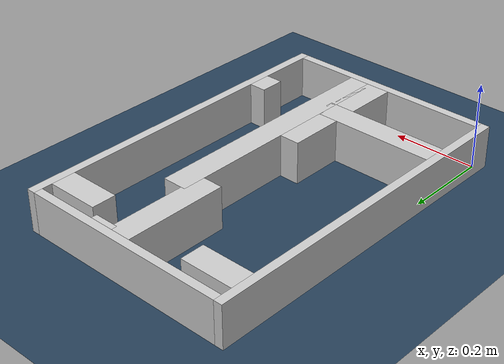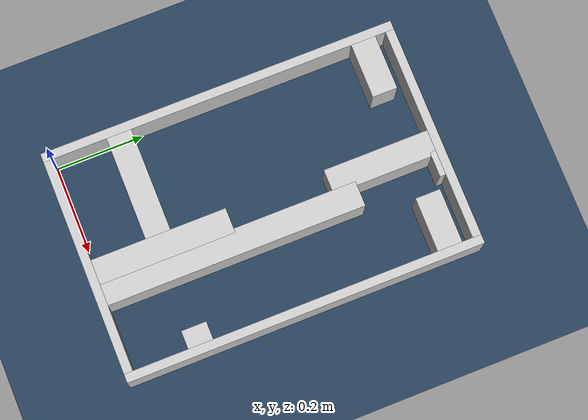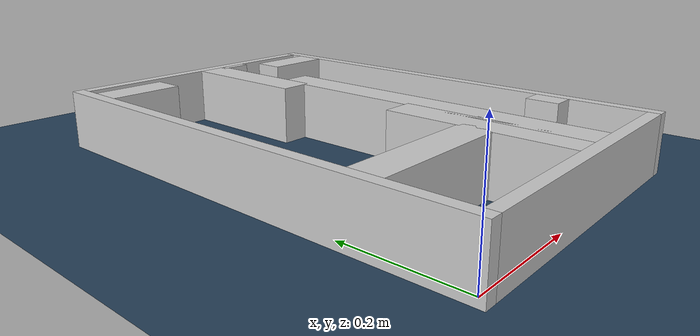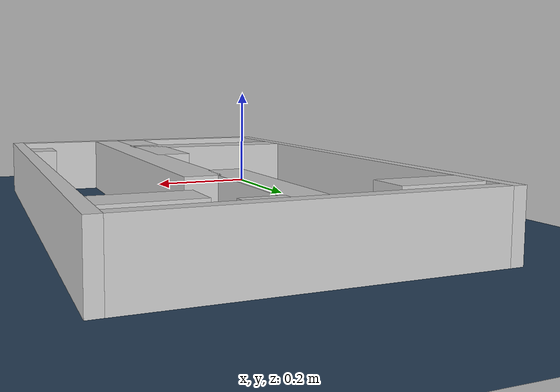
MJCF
<?xml version="1.0" ?>
<mujoco model="generated_real_template">
  <compiler angle="degree"/>
  <option timestep="0.002" integrator="implicitfast" iterations="100" cone="elliptic"/>
  <default>
    <geom density="1"/>
  </default>
  <asset>
    <texture builtin="gradient" height="3072" rgb1="0.3 0.5 0.7" rgb2="0 0 0" type="skybox" width="512"/>
    <texture builtin="checker" height="300" mark="edge" markrgb="0.8 0.8 0.8" name="groundplane" rgb1="0.2 0.3 0.4" rgb2="0.1 0.2 0.3" type="2d" width="300"/>
    <material name="groundplane" reflectance="0.2" texrepeat="5 5" texture="groundplane" texuniform="true"/>
  </asset>
  <worldbody>
    <light dir="0 0 -1" directional="true" pos="0 0 1.5"/>
    <geom name="floor" type="plane" condim="4" friction="0.5 0.005 0.001" material="groundplane" size="0 0 0.05"/>
    <body name="walls">
      <geom name="wall_boundary_left" type="box" condim="4" friction="1.0 0.005 0.0001" rgba="0.8 0.8 0.8 1" pos="-0.010000 0.387500 0.050000" euler="0 0 0.000000" size="0.010000 0.407500 0.050000"/>
      <geom name="wall_boundary_right" type="box" condim="4" friction="1.0 0.005 0.0001" rgba="0.8 0.8 0.8 1" pos="0.500000 0.387500 0.050000" euler="0 0 0.000000" size="0.010000 0.407500 0.050000"/>
      <geom name="wall_boundary_bottom" type="box" condim="4" friction="1.0 0.005 0.0001" rgba="0.8 0.8 0.8 1" pos="0.245000 -0.010000 0.050000" euler="0 0 0.000000" size="0.245000 0.010000 0.050000"/>
      <geom name="wall_boundary_top" type="box" condim="4" friction="1.0 0.005 0.0001" rgba="0.8 0.8 0.8 1" pos="0.245000 0.785000 0.050000" euler="0 0 0.000000" size="0.245000 0.010000 0.050000"/>
      <geom name="wall_inner_1_1" type="box" condim="4" friction="1.0 0.005 0.0001" rgba="0.8 0.8 0.8 1" pos="0.265279 0.154142 0.050000" euler="0 0 90.000000" size="0.154142 0.028500 0.050000"/>
      <geom name="wall_inner_1_2" type="box" condim="4" friction="1.0 0.005 0.0001" rgba="0.8 0.8 0.8 1" pos="0.265279 0.654781 0.050000" euler="0 0 90.000000" size="0.120219 0.028500 0.050000"/>
      <geom name="wall_inner_2_1" type="box" condim="4" friction="1.0 0.005 0.0001" rgba="0.8 0.8 0.8 1" pos="0.148736 0.153090 0.050000" euler="0 0 0.000000" size="0.148736 0.028500 0.050000"/>
      <geom name="wall_inner_2_2" type="box" condim="4" friction="1.0 0.005 0.0001" rgba="0.8 0.8 0.8 1" pos="0.469543 0.153090 0.050000" euler="0 0 0.000000" size="0.020457 0.028500 0.050000"/>
      <geom name="wall_inner_3_1" type="box" condim="4" friction="1.0 0.005 0.0001" rgba="0.8 0.8 0.8 1" pos="0.313029 0.294354 0.050000" euler="0 0 90.000000" size="0.294354 0.028500 0.050000"/>
      <geom name="wall_inner_3_2" type="box" condim="4" friction="1.0 0.005 0.0001" rgba="0.8 0.8 0.8 1" pos="0.313029 0.768267 0.050000" euler="0 0 90.000000" size="0.006733 0.028500 0.050000"/>
      <geom name="wall_inner_4_1" type="box" condim="4" friction="1.0 0.005 0.0001" rgba="0.8 0.8 0.8 1" pos="0.062757 0.722667 0.050000" euler="0 0 0.000000" size="0.062757 0.028500 0.050000"/>
      <geom name="wall_inner_4_2" type="box" condim="4" friction="1.0 0.005 0.0001" rgba="0.8 0.8 0.8 1" pos="0.428319 0.722667 0.050000" euler="0 0 0.000000" size="0.061681 0.028500 0.050000"/>
    </body>
  </worldbody>
</mujoco>
